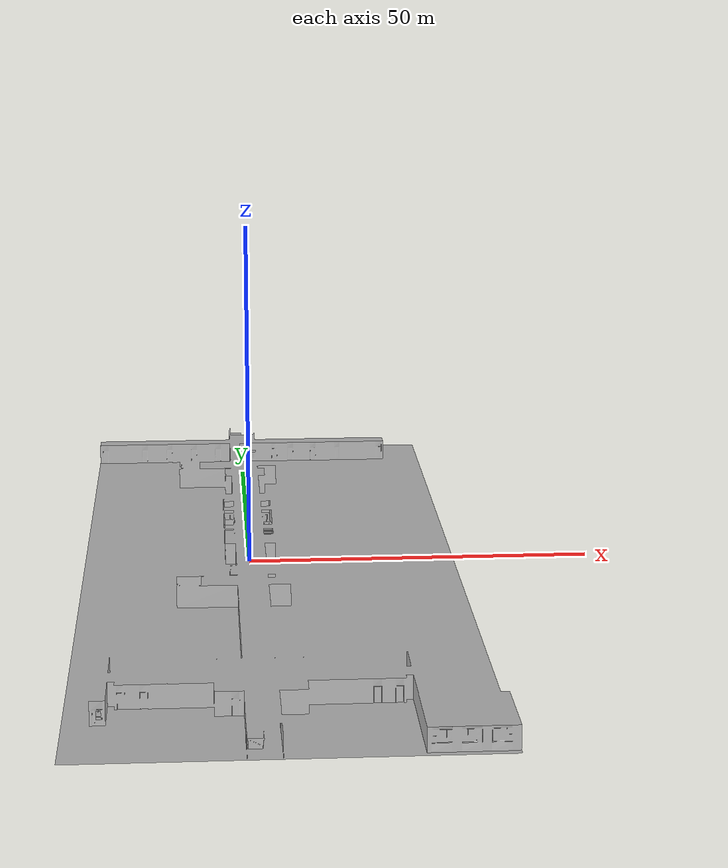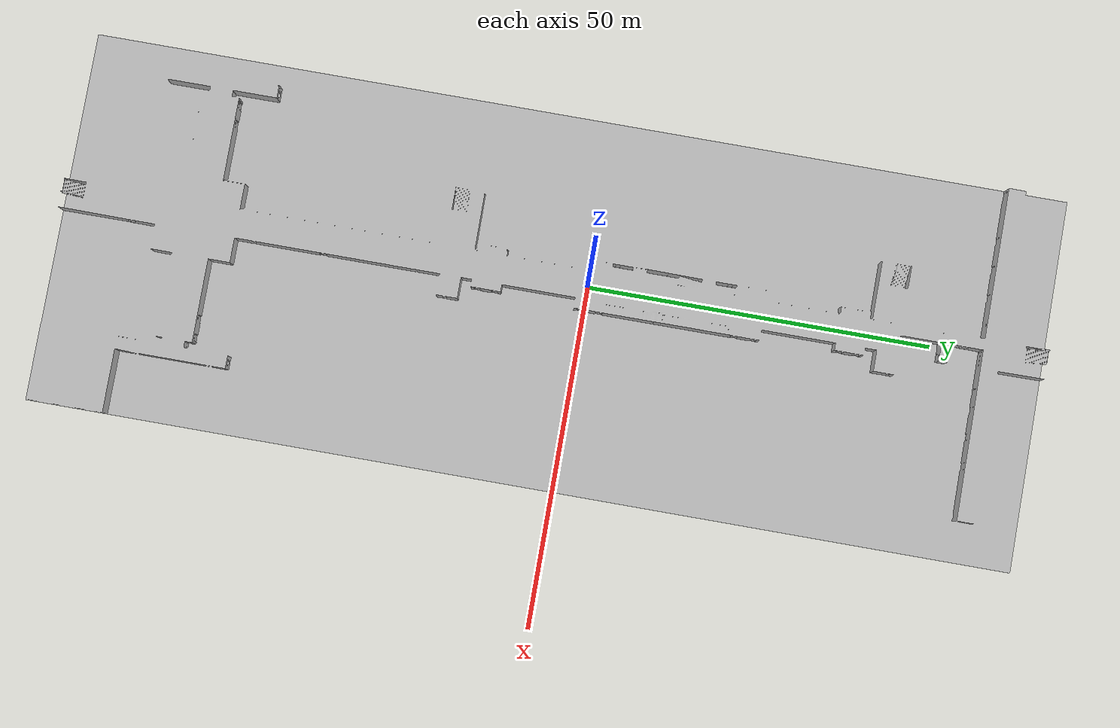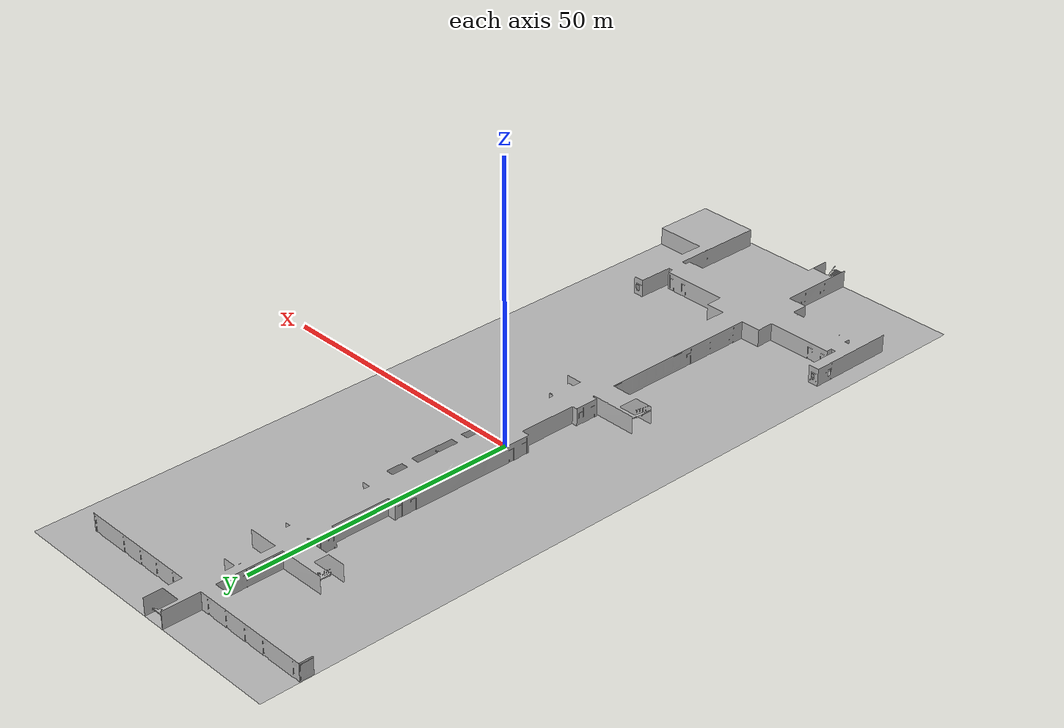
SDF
<?xml version="1.0"?>
<sdf version="1.6">
    <world name='urjc_building_3_1st_world'>

        <!-- Physis Engine Configuration -->
        <physics name="5ms" type="ignored">
            <max_step_size>0.01</max_step_size>
            <real_time_factor>1.0</real_time_factor>
        </physics>

        <!-- Generic Plugins -->
        <plugin
            filename="gz-sim-physics-system"
            name="gz::sim::systems::Physics">
        </plugin>
        <plugin
            filename="gz-sim-user-commands-system"
            name="gz::sim::systems::UserCommands">
        </plugin>
        <plugin
            filename="gz-sim-scene-broadcaster-system"
            name="gz::sim::systems::SceneBroadcaster">
        </plugin>

        <!-- Sensors plugin -->
        <plugin
          filename="gz-sim-sensors-system"
          name="gz::sim::systems::Sensors">
          <render_engine>ogre2</render_engine>
        </plugin>
        <plugin
          filename="gz-sim-imu-system"
          name="gz::sim::systems::Imu">
        </plugin>

        <!-- GPS plugin -->
        <plugin
            filename="gz-sim-navsat-system"
            name="gz::sim::systems::NavSat">
        </plugin>

        <!-- Set the coordinates for the world origin -->
        <spherical_coordinates>
            <surface_model>EARTH_WGS84</surface_model>
            <world_frame_orientation>ENU</world_frame_orientation>
            <latitude_deg>40.283644</latitude_deg>
            <longitude_deg>-3.821479</longitude_deg>
            <elevation>683</elevation>
            <heading_deg>0</heading_deg>
        </spherical_coordinates>

        <!-- Gravity configuration -->
        <gravity>0.0 0.0 -9.8</gravity>

        <!-- Scene configuration -->
        <scene>
            <ambient>0.4 0.4 0.4 1</ambient>
            <background>0.7 0.7 0.7 1</background>
            <shadows>false</shadows>
            <grid>false</grid>
            <origin_visual>false</origin_visual>
        </scene>

        <!-- Sun Light configuration -->
        <light name='sun'
            type='directional'>
            <cast_shadows>0</cast_shadows>
            <pose>0 0 10000 0 0 0</pose>
            <diffuse>0.8 0.8 0.8 1</diffuse>
            <specular>0.2 0.2 0.2 1</specular>
            <attenuation>
                <range>10000</range>
                <constant>0.9</constant>
                <linear>0.01</linear>
                <quadratic>0.001</quadratic>
            </attenuation>
            <direction>-0.5 0.1 -0.9</direction>
        </light>

        <!-- Include the urjc_building 3 1st model -->
        <include>
            <uri>model://urjc_building_3_1st</uri>
        </include>

        <include>
            <uri>model://urjc_building_3_1st_ground_plane</uri>
        </include>
    </world>
</sdf>

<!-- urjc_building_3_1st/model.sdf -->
<sdf version="1.5">
  <model name="urjc_building_3_1st">
    <static>true</static>
    <link name="urjc_building_3_1st_link">
      <collision name="collision">
        <geometry>
          <mesh>
            <uri>model://urjc_building_3_1st/meshes/urjc_building_3_1st.stl</uri>
          </mesh>
        </geometry>
      </collision>
      <visual name="visual">
        <geometry>
          <mesh>
            <uri>model://urjc_building_3_1st/meshes/urjc_building_3_1st.dae</uri>
          </mesh>
        </geometry>
      </visual>
    </link>
  </model>
</sdf>

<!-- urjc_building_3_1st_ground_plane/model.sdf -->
<sdf version="1.5">
  <model name="urjc_building_3_1st_ground_plane">
    <static>true</static>
    <link name="link">
      <collision name="collision">
        <geometry>
          <box>
            <size>70 160 0.02</size>
          </box>
        </geometry>
          <surface>
            <friction>
              <ode>
                <mu>0.7000000</mu>
                <mu2>0.7000000</mu2>
                <fdir1>0.000000 0.000000 1.000000</fdir1>
                <slip1>0.00350000</slip1>
                <slip2>0.00350000</slip2>
              </ode>
            </friction>
            <bounce>
              <restitution_coefficient>0.000000</restitution_coefficient>
              <threshold>100000.000000</threshold>
            </bounce>
            <contact>
              <ode>
                <soft_cfm>0.000000</soft_cfm>
                <soft_erp>0.200000</soft_erp>
                <kp>1000000000.000000</kp>
                <kd>1.000000</kd>
                <max_vel>100.000000</max_vel>
                <min_depth>0.001000</min_depth>
              </ode>
            </contact>
          </surface>
      </collision>
    </link>
  </model>
</sdf>
